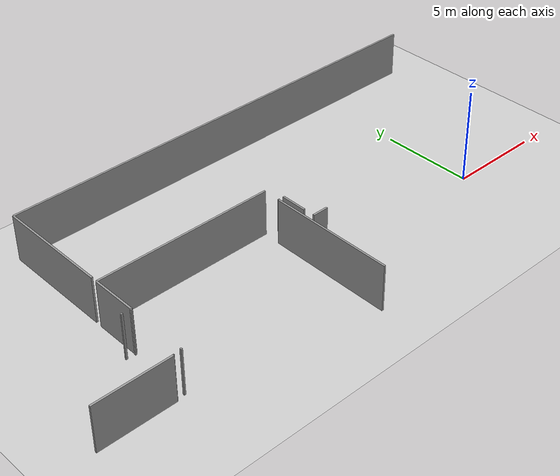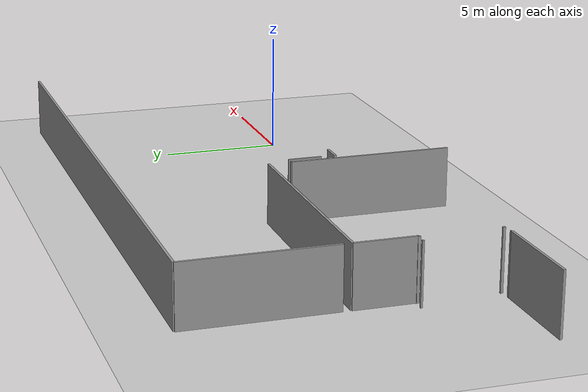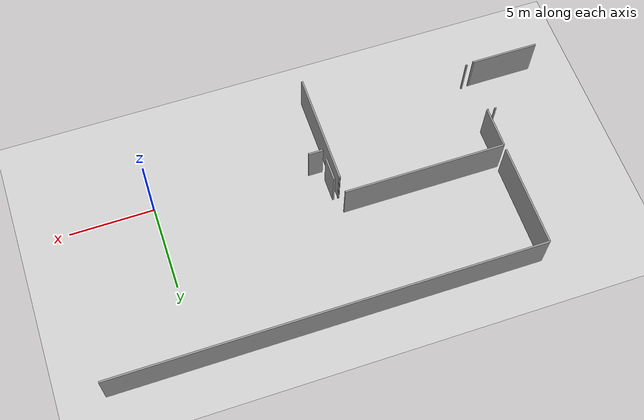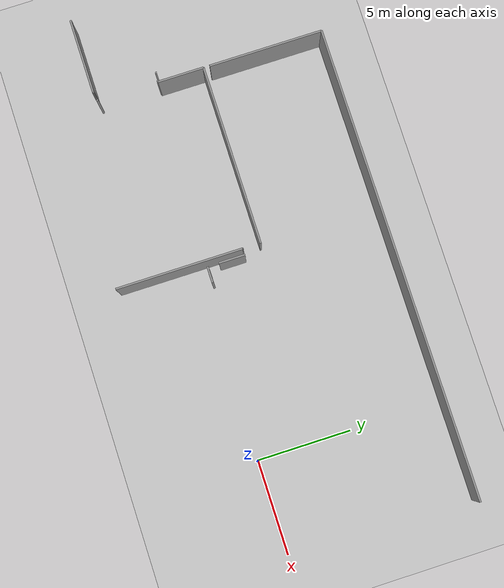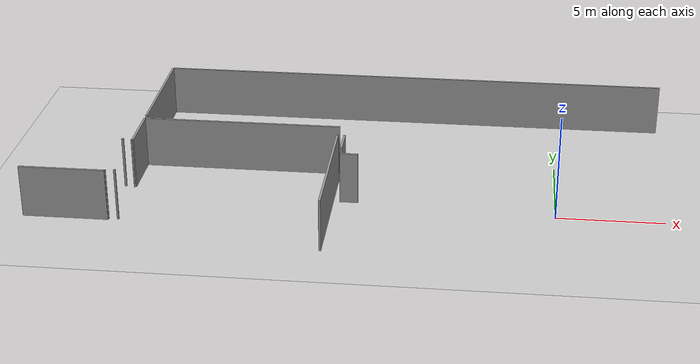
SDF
<sdf version="1.6">
 <world name="default">
  <model name="ground_plane">
   <static>1</static>
   <link name="link">
    <collision name="collision">
     <geometry><plane><normal>0 0 1</normal><size>100 100</size></plane></geometry>
     <surface><friction><ode><mu>100</mu><mu2>50</mu2></ode></friction></surface>
    </collision>
    <visual name="visual">
     <cast_shadows>0</cast_shadows>
     <geometry><plane><normal>0 0 1</normal><size>100 100</size></plane></geometry>
     <material>
      <script><uri>file://media/materials/scripts/gazebo.material</uri><name>Gazebo/Grey</name></script>
     </material>
    </visual>
   </link>
  </model>
  <model name="0510030942_A_40_1_101">
   <static>1</static>
   <link name="Wall_25">
    <collision name="Wall_25_Collision">
     <geometry><box><size>0.0804483757816 0.1 2.5</size></box></geometry>
     <pose>0.0402241878908 0 1.25 0 0 0</pose>
    </collision>
    <visual name="Wall_25_Visual">
     <pose>0.0402241878908 0 1.25 0 0 0</pose>
     <geometry><box><size>0.0804483757816 0.1 2.5</size></box></geometry>
     <material>
      <script><uri>file://media/materials/scripts/gazebo.material</uri><name>Gazebo/Grey</name></script>
      <ambient>1 1 1 1</ambient>
     </material>
    </visual>
    <pose>8.35709928321 -8.70507345839 0 0 0 -1.57079632679</pose>
   </link>
   <link name="Wall_26">
    <collision name="Wall_26_Collision">
     <geometry><box><size>0.0540135224442 0.1 2.5</size></box></geometry>
     <pose>0.0270067612221 0 1.25 0 0 0</pose>
    </collision>
    <visual name="Wall_26_Visual">
     <pose>0.0270067612221 0 1.25 0 0 0</pose>
     <geometry><box><size>0.0540135224442 0.1 2.5</size></box></geometry>
     <material>
      <script><uri>file://media/materials/scripts/gazebo.material</uri><name>Gazebo/Grey</name></script>
      <ambient>1 1 1 1</ambient>
     </material>
    </visual>
    <pose>8.35709928321 -12.0437445986 0 0 0 -1.57079632679</pose>
   </link>
   <link name="Wall_27">
    <collision name="Wall_27_Collision">
     <geometry><box><size>3.98708896014 0.1 2.5</size></box></geometry>
     <pose>1.99354448007 0 1.25 0 0 0</pose>
    </collision>
    <visual name="Wall_27_Visual">
     <pose>1.99354448007 0 1.25 0 0 0</pose>
     <geometry><box><size>3.98708896014 0.1 2.5</size></box></geometry>
     <material>
      <script><uri>file://media/materials/scripts/gazebo.material</uri><name>Gazebo/Grey</name></script>
      <ambient>1 1 1 1</ambient>
     </material>
    </visual>
    <pose>8.35709928321 -12.0977581211 0 0 0 -3.14076388928</pose>
   </link>
   <link name="Wall_29">
    <collision name="Wall_29_Collision">
     <geometry><box><size>0.0862945452697 0.1 2.5</size></box></geometry>
     <pose>0.0431472726348 0 1.25 0 0 0</pose>
    </collision>
    <visual name="Wall_29_Visual">
     <pose>0.0431472726348 0 1.25 0 0 0</pose>
     <geometry><box><size>0.0862945452697 0.1 2.5</size></box></geometry>
     <material>
      <script><uri>file://media/materials/scripts/gazebo.material</uri><name>Gazebo/Grey</name></script>
      <ambient>1 1 1 1</ambient>
     </material>
    </visual>
    <pose>8.85122769559 -12.0099384881 0 0 0 3.14159265359</pose>
   </link>
   <link name="Wall_30">
    <collision name="Wall_30_Collision">
     <geometry><box><size>0.0742209343704 0.1 2.5</size></box></geometry>
     <pose>0.0371104671852 0 1.25 0 0 0</pose>
    </collision>
    <visual name="Wall_30_Visual">
     <pose>0.0371104671852 0 1.25 0 0 0</pose>
     <geometry><box><size>0.0742209343704 0.1 2.5</size></box></geometry>
     <material>
      <script><uri>file://media/materials/scripts/gazebo.material</uri><name>Gazebo/Grey</name></script>
      <ambient>1 1 1 1</ambient>
     </material>
    </visual>
    <pose>8.76493315032 -8.78691983122 0 0 0 0.0</pose>
   </link>
   <link name="Wall_31">
    <collision name="Wall_31_Collision">
     <geometry><box><size>2.43797976717 0.1 2.5</size></box></geometry>
     <pose>1.21898988358 0 1.25 0 0 0</pose>
    </collision>
    <visual name="Wall_31_Visual">
     <pose>1.21898988358 0 1.25 0 0 0</pose>
     <geometry><box><size>2.43797976717 0.1 2.5</size></box></geometry>
     <material>
      <script><uri>file://media/materials/scripts/gazebo.material</uri><name>Gazebo/Grey</name></script>
      <ambient>1 1 1 1</ambient>
     </material>
    </visual>
    <pose>8.83915408469 -8.78691983122 0 0 0 1.57079632679</pose>
   </link>
   <link name="Wall_32">
    <collision name="Wall_32_Collision">
     <geometry><box><size>9.54094860454 0.1 2.5</size></box></geometry>
     <pose>4.77047430227 0 1.25 0 0 0</pose>
    </collision>
    <visual name="Wall_32_Visual">
     <pose>4.77047430227 0 1.25 0 0 0</pose>
     <geometry><box><size>9.54094860454 0.1 2.5</size></box></geometry>
     <material>
      <script><uri>file://media/materials/scripts/gazebo.material</uri><name>Gazebo/Grey</name></script>
      <ambient>1 1 1 1</ambient>
     </material>
    </visual>
    <pose>8.83915408469 -6.34894006405 0 0 0 0.0</pose>
   </link>
   <link name="Wall_33">
    <collision name="Wall_33_Collision">
     <geometry><box><size>0.0437191805195 0.1 2.5</size></box></geometry>
     <pose>0.0218595902598 0 1.25 0 0 0</pose>
    </collision>
    <visual name="Wall_33_Visual">
     <pose>0.0218595902598 0 1.25 0 0 0</pose>
     <geometry><box><size>0.0437191805195 0.1 2.5</size></box></geometry>
     <material>
      <script><uri>file://media/materials/scripts/gazebo.material</uri><name>Gazebo/Grey</name></script>
      <ambient>1 1 1 1</ambient>
     </material>
    </visual>
    <pose>18.3801026892 -7.26259468253 0 0 0 -1.57079632679</pose>
   </link>
   <link name="Wall_34">
    <collision name="Wall_34_Collision">
     <geometry><box><size>0.0180468710284 0.1 2.5</size></box></geometry>
     <pose>0.00902343551421 0 1.25 0 0 0</pose>
    </collision>
    <visual name="Wall_34_Visual">
     <pose>0.00902343551421 0 1.25 0 0 0</pose>
     <geometry><box><size>0.0180468710284 0.1 2.5</size></box></geometry>
     <material>
      <script><uri>file://media/materials/scripts/gazebo.material</uri><name>Gazebo/Grey</name></script>
      <ambient>1 1 1 1</ambient>
     </material>
    </visual>
    <pose>18.3801026892 -7.30631386305 0 0 0 3.14159265359</pose>
   </link>
   <link name="Wall_35">
    <collision name="Wall_35_Collision">
     <geometry><box><size>6.66933557013 0.1 2.5</size></box></geometry>
     <pose>3.33466778506 0 1.25 0 0 0</pose>
    </collision>
    <visual name="Wall_35_Visual">
     <pose>3.33466778506 0 1.25 0 0 0</pose>
     <geometry><box><size>6.66933557013 0.1 2.5</size></box></geometry>
     <material>
      <script><uri>file://media/materials/scripts/gazebo.material</uri><name>Gazebo/Grey</name></script>
      <ambient>1 1 1 1</ambient>
     </material>
    </visual>
    <pose>18.3620558182 -7.30631386305 0 0 0 -1.57079632679</pose>
   </link>
   <link name="Wall_38">
    <collision name="Wall_38_Collision">
     <geometry><box><size>6.02053784759 0.1 2.5</size></box></geometry>
     <pose>3.0102689238 0 1.25 0 0 0</pose>
    </collision>
    <visual name="Wall_38_Visual">
     <pose>3.0102689238 0 1.25 0 0 0</pose>
     <geometry><box><size>6.02053784759 0.1 2.5</size></box></geometry>
     <material>
      <script><uri>file://media/materials/scripts/gazebo.material</uri><name>Gazebo/Grey</name></script>
      <ambient>1 1 1 1</ambient>
     </material>
    </visual>
    <pose>8.84614406995 -6.02053784759 0 0 0 1.57079632679</pose>
   </link>
   <link name="Wall_39">
    <collision name="Wall_39_Collision">
     <geometry><box><size>25.1155253927 0.1 2.5</size></box></geometry>
     <pose>12.5577626964 0 1.25 0 0 0</pose>
    </collision>
    <visual name="Wall_39_Visual">
     <pose>12.5577626964 0 1.25 0 0 0</pose>
     <geometry><box><size>25.1155253927 0.1 2.5</size></box></geometry>
     <material>
      <script><uri>file://media/materials/scripts/gazebo.material</uri><name>Gazebo/Grey</name></script>
      <ambient>1 1 1 1</ambient>
     </material>
    </visual>
    <pose>8.84614406995 -0.0 0 0 0 0.0</pose>
   </link>
   <link name="Wall_47">
    <collision name="Wall_47_Collision">
     <geometry><box><size>1.38554216867 0.1 2.5</size></box></geometry>
     <pose>0.692771084337 0 1.25 0 0 0</pose>
    </collision>
    <visual name="Wall_47_Visual">
     <pose>0.692771084337 0 1.25 0 0 0</pose>
     <geometry><box><size>1.38554216867 0.1 2.5</size></box></geometry>
     <material>
      <script><uri>file://media/materials/scripts/gazebo.material</uri><name>Gazebo/Grey</name></script>
      <ambient>1 1 1 1</ambient>
     </material>
    </visual>
    <pose>18.695287479 -8.65652483351 0 0 0 1.57079632679</pose>
   </link>
   <link name="Wall_63">
    <collision name="Wall_63_Collision">
     <geometry><box><size>0.85239692949 0.1 2.5</size></box></geometry>
     <pose>0.426198464745 0 1.25 0 0 0</pose>
    </collision>
    <visual name="Wall_63_Visual">
     <pose>0.426198464745 0 1.25 0 0 0</pose>
     <geometry><box><size>0.85239692949 0.1 2.5</size></box></geometry>
     <material>
      <script><uri>file://media/materials/scripts/gazebo.material</uri><name>Gazebo/Grey</name></script>
      <ambient>1 1 1 1</ambient>
     </material>
    </visual>
    <pose>18.6951603884 -9.25194448681 0 0 0 0.0</pose>
   </link>
   <pose>-28.7 9.84021147883 0 0 0 0</pose>
  </model>
 </world>
</sdf>
